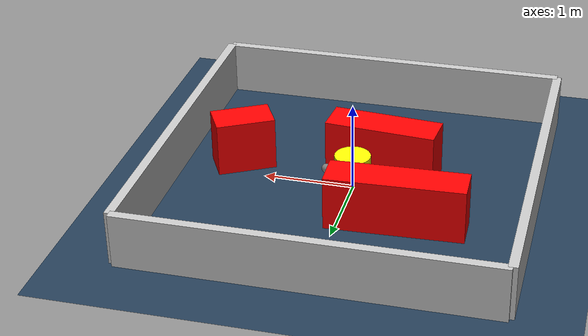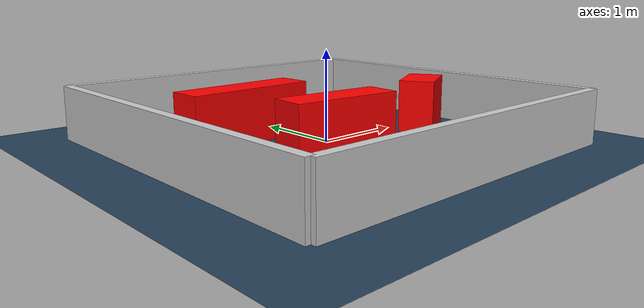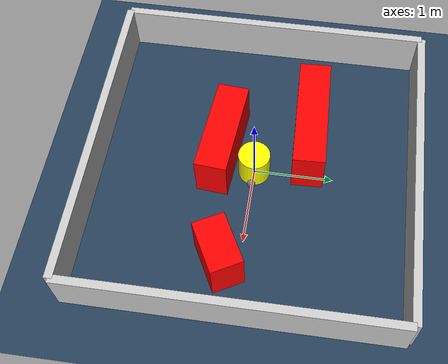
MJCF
<?xml version="1.0" ?>
<mujoco model="generated_environment">
  <option timestep="0.01" integrator="RK4" cone="elliptic"/>
  <default>
    <geom density="1"/>
  </default>
  <asset>
    <texture builtin="gradient" height="3072" rgb1="0.3 0.5 0.7" rgb2="0 0 0" type="skybox" width="512"/>
    <texture builtin="checker" height="300" mark="edge" markrgb="0.8 0.8 0.8" name="groundplane" rgb1="0.2 0.3 0.4" rgb2="0.1 0.2 0.3" type="2d" width="300"/>
    <material name="groundplane" reflectance="0.2" texrepeat="5 5" texture="groundplane" texuniform="true"/>
    <material name="robot" rgba="0.0 1.0 0.0 1"/>
  </asset>
  <worldbody>
    <light dir="0 0 -1" directional="true" pos="0 0 1.5"/>
    <geom condim="4" friction="1.0 0.005 0.001" material="groundplane" name="floor" size="0 0 0.05" type="plane"/>
    <body name="walls">
      <geom name="wall_1" condim="4" pos="-2.0 0.0 0.3" rgba="0.800000011920929 0.800000011920929 0.800000011920929 1.0" size="0.05 2.0 0.3" type="box"/>
      <geom name="wall_2" condim="4" pos="2.0 0.0 0.3" rgba="0.800000011920929 0.800000011920929 0.800000011920929 1.0" size="0.05 2.0 0.3" type="box"/>
      <geom name="wall_3" condim="4" pos="0.0 -2.0 0.3" rgba="0.800000011920929 0.800000011920929 0.800000011920929 1.0" size="2.0 0.05 0.3" type="box"/>
      <geom name="wall_4" condim="4" pos="0.0 2.0 0.3" rgba="0.800000011920929 0.800000011920929 0.800000011920929 1.0" size="2.0 0.05 0.3" type="box"/>
    </body>
    <body name="robot">
      <joint name="joint_x" type="slide" pos="0 0 0" axis="1 0 0"/>
      <joint name="joint_y" type="slide" pos="0 0 0" axis="0 1 0"/>
      <geom name="robot" type="sphere" pos="0.3 0.0 0.2" size="0.05" mass="5." friction="1.0 0.005 0.0001" condim="4" rgba="0.5 0.5 0.5 1.0"/>
      <site name="sensor_ball"/>
    </body>
    <body name="obstacle_movable_1">
      <geom name="obstacle_movable_1" condim="4" pos="0.0 0.0 0.2" euler="0 0 0.0" friction="1.0 0.005 0.001" rgba="1.0 1.0 0.0 1.0" size="0.2 0.2 0.0" type="cylinder" mass="0.1"/>
      <joint type="free"/>
    </body>
    <body name="obstacle_2_static">
      <geom name="obstacle_2_static" condim="4" pos="-0.6246367553239204 0.6546486572523074 0.3" euler="0 0 2.076181873492118" friction="1.0 0.005 0.001" rgba="1 0 0 1" size="0.747951142158805 0.2 0.3" type="box"/>
    </body>
    <body name="obstacle_3_static">
      <geom name="obstacle_3_static" condim="4" pos="1.3214898987034953 -0.23870269409709777 0.3" euler="0 0 208.7680506207596" friction="1.0 0.005 0.001" rgba="1 0 0 1" size="0.3279951246847679 0.2 0.3" type="box"/>
    </body>
    <body name="obstacle_4_static">
      <geom name="obstacle_4_static" condim="4" pos="-0.2524408213714302 -0.4367499731460449 0.3" euler="0 0 175.07193548902612" friction="1.0 0.005 0.001" rgba="1 0 0 1" size="0.6214019552755201 0.2 0.3" type="box"/>
    </body>
  </worldbody>
  <actuator>
    <motor name="actuator_x" joint="joint_x" gear="1" ctrlrange="-1 1"/>
    <motor name="actuator_y" joint="joint_y" gear="1" ctrlrange="-1 1"/>
  </actuator>
</mujoco>
